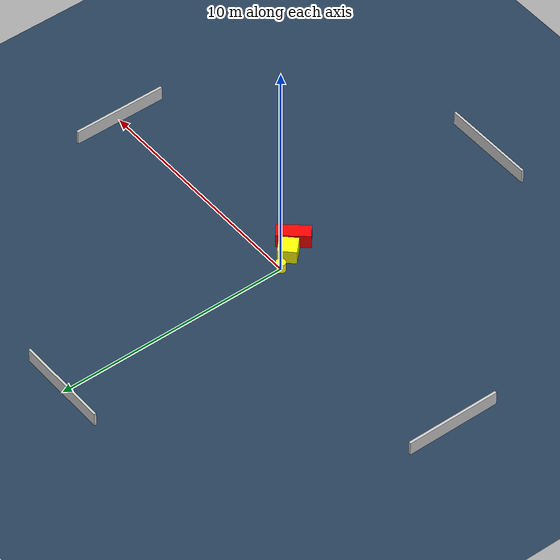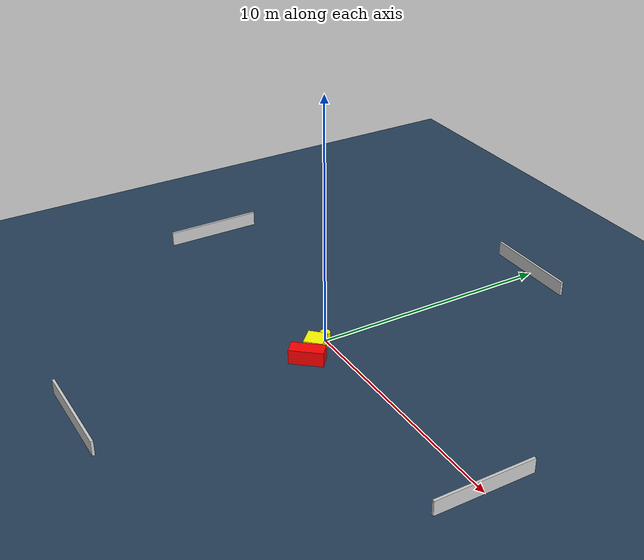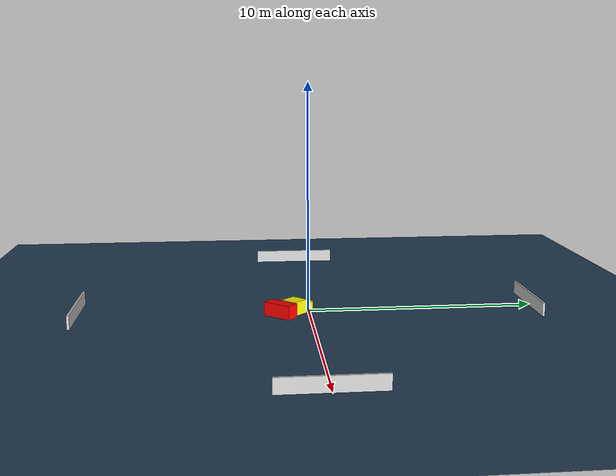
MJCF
<?xml version="1.0" ?>
<mujoco model="generated_environment">
  <option timestep="0.01" integrator="RK4" cone="elliptic"/>
  <default>
    <geom density="1"/>
  </default>
  <asset>
    <texture builtin="gradient" height="3072" name="skybox" rgb1="0.3 0.5 0.7" rgb2="0 0 0" type="skybox" width="512"/>
    <texture builtin="checker" height="300" name="groundplane" rgb1="0.2 0.3 0.4" rgb2="0.1 0.2 0.3" type="2d" width="300"/>
    <material name="groundplane" reflectance="0.2" texrepeat="5 5" texture="groundplane"/>
  </asset>
  <worldbody>
    <light dir="0 0 -1" directional="true" pos="0 0 1.5"/>
    <geom condim="3" friction="0.5 0.005 0.001" material="groundplane" name="floor" pos="0 0 0" size="0 0 0.05" type="plane"/>
    <body name="walls">
      <geom name="wall_1" condim="4" pos="-10.0 0.0 0.3" rgba="0.800000011920929 0.800000011920929 0.800000011920929 1.0" size="0.05 2.0 0.3" type="box"/>
      <geom name="wall_2" condim="4" pos="10.0 0.0 0.3" rgba="0.800000011920929 0.800000011920929 0.800000011920929 1.0" size="0.05 2.0 0.3" type="box"/>
      <geom name="wall_3" condim="4" pos="0.0 -10.0 0.3" rgba="0.800000011920929 0.800000011920929 0.800000011920929 1.0" size="2.0 0.05 0.3" type="box"/>
      <geom name="wall_4" condim="4" pos="0.0 10.0 0.3" rgba="0.800000011920929 0.800000011920929 0.800000011920929 1.0" size="2.0 0.05 0.3" type="box"/>
    </body>
    <body name="robot">
      <joint name="joint_x" type="slide" pos="0 0 0" axis="1 0 0"/>
      <joint name="joint_y" type="slide" pos="0 0 0" axis="0 1 0"/>
      <geom name="robot" type="cylinder" pos="0.0 0.0 0.2" size="0.2 0.2 0.0" mass="5.0" friction="1.0 0.005 0.0001" condim="4" rgba="1.0 1.0 0.0 1.0"/>
    </body>
    <body name="obstacle_1_movable">
      <geom name="obstacle_1_movable" condim="4" pos="0.3948682519277883 -0.6524333286974511 0.3" euler="0 0 135.1902883486861" friction="0.0 0.005 0.001" rgba="1.0 1.0 0.0 1.0" size="0.3844037607277971 0.3780181736524817 0.3" type="box" mass="0.1"/>
      <joint type="free"/>
    </body>
    <body name="obstacle_2_static">
      <geom name="obstacle_2_static" condim="4" pos="0.8396824470725397 -1.2624139402189711 0.3" euler="0 0 319.5736600438449" friction="0.0 0.005 0.001" rgba="1.0 0.0 0.0 1.0" size="0.2931334713767251 0.6728741335880863 0.3" type="box"/>
    </body>
  </worldbody>
  <actuator>
    <motor name="actuator_x" joint="joint_x" gear="1" ctrlrange="-1 1"/>
    <motor name="actuator_y" joint="joint_y" gear="1" ctrlrange="-1 1"/>
  </actuator>
</mujoco>
